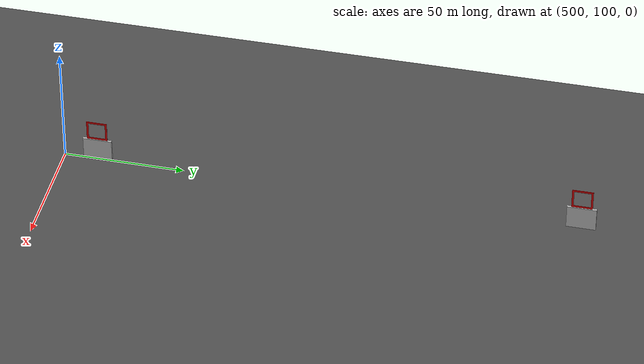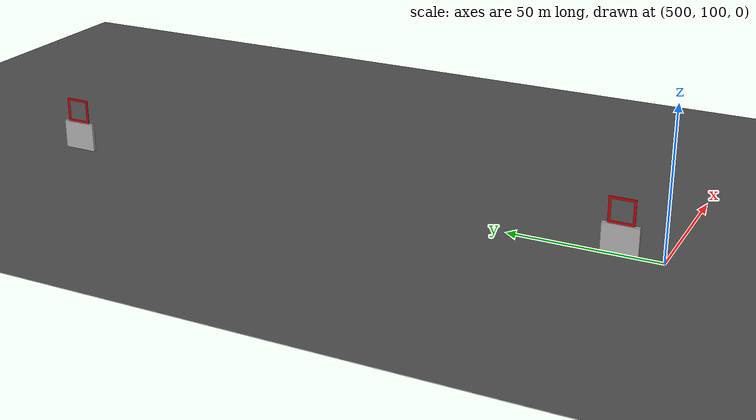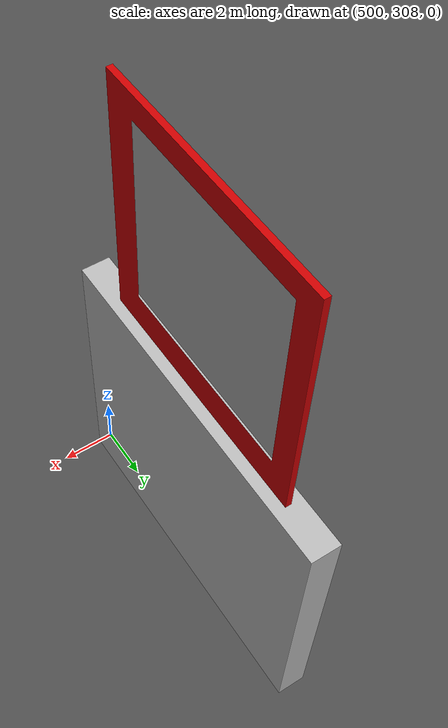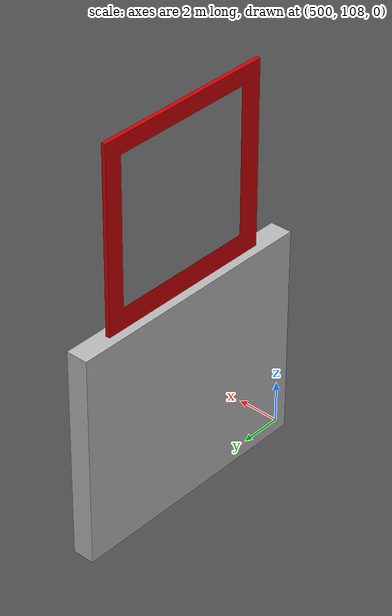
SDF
<?xml version="1.0" ?>
<sdf version="1.5">
  <world name="default">
    <!-- A global light source -->
    <include>
      <uri>model://sun</uri>
    </include>
    <!-- A ground plane -->
    <include>
      <uri>model://ground_plane</uri>
    </include>
    <include>
        <uri>model://my_asphalt_plane</uri>
    </include>
    <!--Input the first frame model-->
    <model name="my_frame1">
      <include>
        <pose frame=''>500 114 0 0 0 1.57</pose>
        <scale>1 1 1</scale>
        <uri>model://my_frame</uri>
      </include>
    </model>
    <!--Input the second frame model-->
    <model name="my_frame2">
      <include>
        <pose frame=''>500 314 0 0 0 -1.57</pose>
        <scale>1 1 1</scale>
        <uri>model://my_frame</uri>
      </include>
    </model>
    <!--physics character set-->
    <physics name='default_physics' default='0' type='ode'>
      <gravity>0 0 -9.8066</gravity>
      <ode>
        <solver>
          <type>quick</type>
          <iters>10</iters>
          <sor>1.3</sor>
          <use_dynamic_moi_rescaling>0</use_dynamic_moi_rescaling>
        </solver>
        <constraints>
          <cfm>0</cfm>
          <erp>0.2</erp>
          <contact_max_correcting_vel>100</contact_max_correcting_vel>
          <contact_surface_layer>0.001</contact_surface_layer>
        </constraints>
      </ode>
      <max_step_size>0.004</max_step_size>
      <real_time_factor>1</real_time_factor>
      <real_time_update_rate>250</real_time_update_rate>
      <magnetic_field>6.0e-6 2.3e-5 -4.2e-5</magnetic_field>
    </physics>
  </world>
</sdf>

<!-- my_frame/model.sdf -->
<sdf version="1.5">
  <model name="my_frame">
    <link name="link">
      <inertial>
        <pose>0 0 0 0 0 0</pose>
        <!-- volume about 0.0085 m^3, density 2000 kg/m^3 -->
        <mass>5</mass>
        <!-- approximate as uniform box 0.37 x 0.17 x 0.20 m -->
        <inertia>
          <ixx>0.06908</ixx>
          <ixy>0.0000</ixy>
          <iyy>0.028705</iyy>
          <ixz>0.0000</ixz>
          <iyz>0.0000</iyz>
          <izz>0.073708</izz>
        </inertia>
      </inertial>
      <visual name="visual">
        <geometry>
          <mesh>
            <uri>model://my_frame/meshes/my_frame1.dae</uri>
          </mesh>
        </geometry>
      </visual>
      <collision name="top">
        <pose>0 0 0.130175 0 0 0</pose>
        <geometry>
          <box>
            <size>0.19368008 0.396875 0.0254</size>
          </box>
        </geometry>
        <surface>
          <contact>
            <ode>
              <max_vel>0.1</max_vel>
              <min_depth>0.001</min_depth>
            </ode>
          </contact>
          <friction>
            <ode>
              <mu>1.0</mu>
              <mu2>1.0</mu2>
            </ode>
          </friction>
        </surface>
      </collision>
      <collision name="bottom">
        <pose>0 0 0.0127 0 0 0</pose>
        <geometry>
          <box>
            <size>0.19368008 0.396875 0.0254</size>
          </box>
        </geometry>
        <surface>
          <contact>
            <ode>
              <max_vel>0.1</max_vel>
              <min_depth>0.001</min_depth>
            </ode>
          </contact>
          <friction>
            <ode>
              <mu>1.0</mu>
              <mu2>1.0</mu2>
            </ode>
          </friction>
        </surface>
      </collision>
      <collision name="left">
        <pose>0 -0.1857375 0.0714375 0 0 0</pose>
        <geometry>
          <box>
            <size>0.19368008 0.0254 0.092075</size>
          </box>
        </geometry>
        <surface>
          <contact>
            <ode>
              <max_vel>0.1</max_vel>
              <min_depth>0.001</min_depth>
            </ode>
          </contact>
          <friction>
            <ode>
              <mu>1.0</mu>
              <mu2>1.0</mu2>
            </ode>
          </friction>
        </surface>
      </collision>
      <collision name="right">
        <pose>0 0.1857375 0.0714375 0 0 0</pose>
        <geometry>
          <box>
            <size>0.19368008 0.0254 0.092075</size>
          </box>
        </geometry>
        <surface>
          <contact>
            <ode>
              <max_vel>0.1</max_vel>
              <min_depth>0.001</min_depth>
            </ode>
          </contact>
          <friction>
            <ode>
              <mu>1.0</mu>
              <mu2>1.0</mu2>
            </ode>
          </friction>
        </surface>
      </collision>
      <collision name="middle">
        <pose>0 0 0.0714375 0 0 0</pose>
        <geometry>
          <box>
            <size>0.19368008 0.0254 0.092075</size>
          </box>
        </geometry>
        <surface>
          <contact>
            <ode>
              <max_vel>0.1</max_vel>
              <min_depth>0.001</min_depth>
            </ode>
          </contact>
          <friction>
            <ode>
              <mu>1.0</mu>
              <mu2>1.0</mu2>
            </ode>
          </friction>
        </surface>
      </collision>
    </link>
  </model>
</sdf>

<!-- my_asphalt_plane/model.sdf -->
<sdf version="1.5">
  <model name="my_asphalt_plane">
    <static>true</static>
    <link name="link">
      <collision name="collision">
        <geometry>
          <box>
            <size>2100 2100 .01</size>
          </box>
        </geometry>
      </collision>
      <visual name="visual">
        <cast_shadows>false</cast_shadows>
        <geometry>
          <box>
            <size>2100 2100 .01</size>
          </box>
        </geometry>
        <material>
          <script>
            <uri>model://my_asphalt_plane/materials/scripts</uri>
            <uri>model://my_asphalt_plane/materials/textures</uri>
            <name>vrc/asphalt</name>
          </script>
        </material>
      </visual>
    </link>
  </model>
</sdf>
